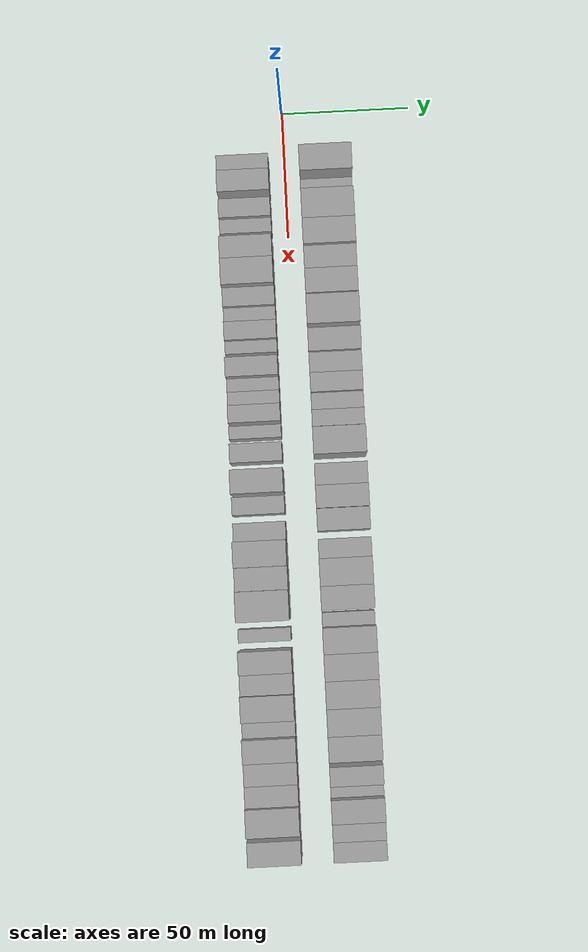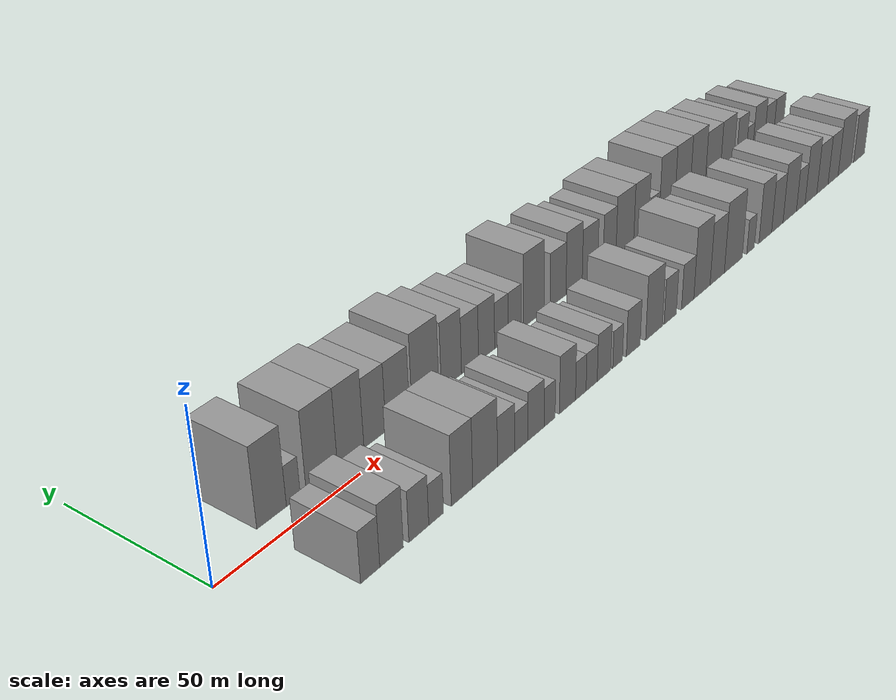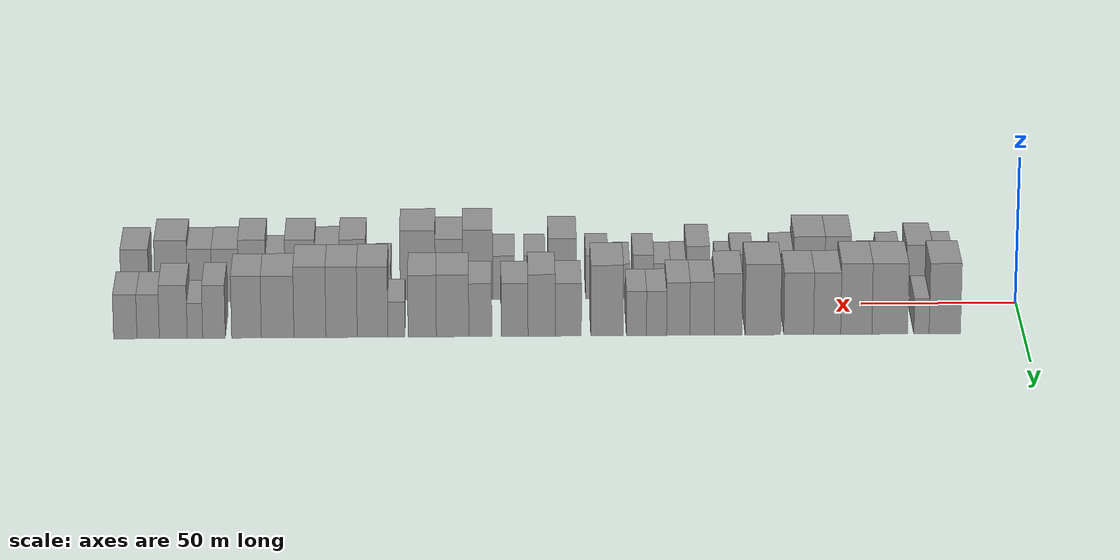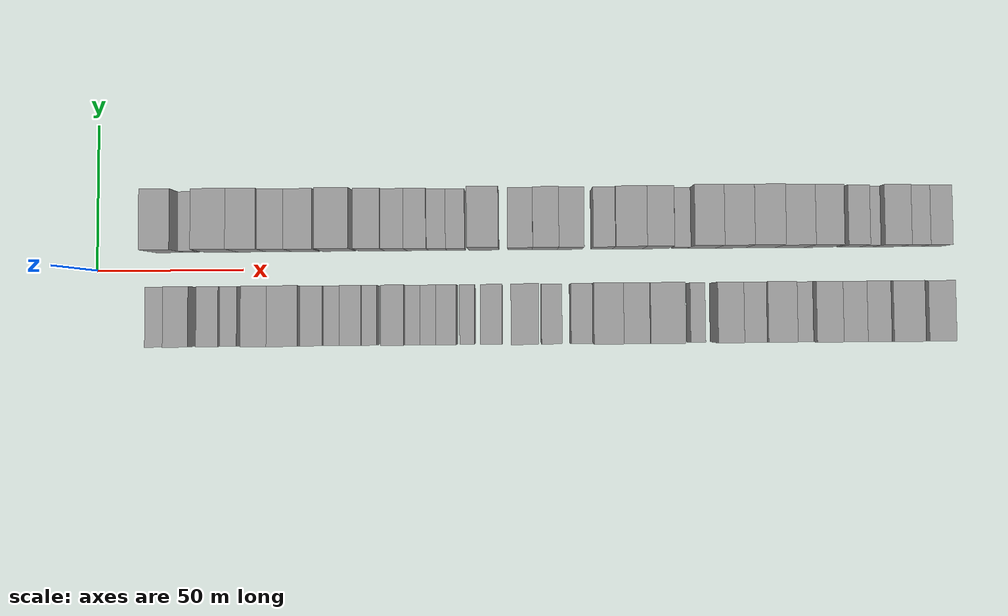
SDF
<sdf version="1.6">
 <world name="default">
  <scene>
   <sky><clouds><speed>12</speed></clouds></sky>
   <ambient>0.4 0.4 0.4 1</ambient>
   <background>0.7 0.7 0.7 1</background>
   <shadows>1</shadows>
  </scene>
  <gravity>0 0 -9.8066</gravity>
  <magnetic_field>6e-06 2.3e-05 -4.2e-05</magnetic_field>
  <physics default="0" name="default_physics" type="ode">
   <ode>
    <solver>
     <type>quick</type>
     <iters>10</iters>
     <sor>1.0</sor>
     <use_dynamic_moi_rescaling>0</use_dynamic_moi_rescaling>
    </solver>
    <constraints>
     <cfm>0</cfm>
     <erp>0.2</erp>
     <contact_max_correcting_vel>100</contact_max_correcting_vel>
     <contact_surface_layer>0.001</contact_surface_layer>
    </constraints>
   </ode>
   <max_step_size>0.004</max_step_size>
   <real_time_factor>1</real_time_factor>
   <real_time_update_rate>250</real_time_update_rate>
  </physics>
  <light name="sun" type="directional">
   <pose>0 0 10 0 0 0</pose>
   <diffuse>0.8 0.8 0.8 1</diffuse>
   <specular>0.2 0.2 0.2 1</specular>
   <attenuation>
    <range>1000</range>
    <constant>0.9</constant>
    <linear>0.01</linear>
    <quadratic>0.001</quadratic>
   </attenuation>
   <direction>-0.5 0.1 -0.9</direction>
  </light>
  <model name="building_1">
   <static>1</static>
   <pose>25.0048 16.0000 0 0.000000 0.000000 1.570796</pose>
   <link name="link">
    <pose>0 0 12.00 0 0 0</pose>
    <collision name="collision"><geometry><box><size>20.0000 10.0095 24.0000</size></box></geometry></collision>
    <visual name="visual">
     <cast_shadows>0</cast_shadows>
     <geometry><box><size>20.0000 10.0095 24.0000</size></box></geometry>
     <material>
      <script>
       <uri>model://grey_wall/materials/scripts</uri>
       <uri>model://grey_wall/materials/textures</uri>
       <name>vrc/grey_wall</name>
      </script>
     </material>
    </visual>
   </link>
  </model>
  <model name="building_2">
   <static>1</static>
   <pose>32.4360 16.0000 0 0.000000 0.000000 1.570796</pose>
   <link name="link">
    <pose>0 0 6.00 0 0 0</pose>
    <collision name="collision"><geometry><box><size>20.0000 4.8529 12.0000</size></box></geometry></collision>
    <visual name="visual">
     <cast_shadows>0</cast_shadows>
     <geometry><box><size>20.0000 4.8529 12.0000</size></box></geometry>
     <material>
      <script>
       <uri>model://grey_wall/materials/scripts</uri>
       <uri>model://grey_wall/materials/textures</uri>
       <name>vrc/grey_wall</name>
      </script>
     </material>
    </visual>
   </link>
  </model>
  <model name="building_3">
   <static>1</static>
   <pose>42.5561 16.0000 0 0.000000 0.000000 1.570796</pose>
   <link name="link">
    <pose>0 0 12.00 0 0 0</pose>
    <collision name="collision"><geometry><box><size>20.0000 11.3873 24.0000</size></box></geometry></collision>
    <visual name="visual">
     <cast_shadows>0</cast_shadows>
     <geometry><box><size>20.0000 11.3873 24.0000</size></box></geometry>
     <material>
      <script>
       <uri>model://grey_wall/materials/scripts</uri>
       <uri>model://grey_wall/materials/textures</uri>
       <name>vrc/grey_wall</name>
      </script>
     </material>
    </visual>
   </link>
  </model>
  <model name="building_4">
   <static>1</static>
   <pose>53.2149 16.0000 0 0.000000 0.000000 1.570796</pose>
   <link name="link">
    <pose>0 0 12.00 0 0 0</pose>
    <collision name="collision"><geometry><box><size>20.0000 9.9303 24.0000</size></box></geometry></collision>
    <visual name="visual">
     <cast_shadows>0</cast_shadows>
     <geometry><box><size>20.0000 9.9303 24.0000</size></box></geometry>
     <material>
      <script>
       <uri>model://grey_wall/materials/scripts</uri>
       <uri>model://grey_wall/materials/textures</uri>
       <name>vrc/grey_wall</name>
      </script>
     </material>
    </visual>
   </link>
  </model>
  <model name="building_5">
   <static>1</static>
   <pose>62.4863 16.0000 0 0.000000 0.000000 1.570796</pose>
   <link name="link">
    <pose>0 0 10.50 0 0 0</pose>
    <collision name="collision"><geometry><box><size>20.0000 8.6126 21.0000</size></box></geometry></collision>
    <visual name="visual">
     <cast_shadows>0</cast_shadows>
     <geometry><box><size>20.0000 8.6126 21.0000</size></box></geometry>
     <material>
      <script>
       <uri>model://grey_wall/materials/scripts</uri>
       <uri>model://grey_wall/materials/textures</uri>
       <name>vrc/grey_wall</name>
      </script>
     </material>
    </visual>
   </link>
  </model>
  <model name="building_6">
   <static>1</static>
   <pose>71.5398 16.0000 0 0.000000 0.000000 1.570796</pose>
   <link name="link">
    <pose>0 0 10.50 0 0 0</pose>
    <collision name="collision"><geometry><box><size>20.0000 9.4945 21.0000</size></box></geometry></collision>
    <visual name="visual">
     <cast_shadows>0</cast_shadows>
     <geometry><box><size>20.0000 9.4945 21.0000</size></box></geometry>
     <material>
      <script>
       <uri>model://grey_wall/materials/scripts</uri>
       <uri>model://grey_wall/materials/textures</uri>
       <name>vrc/grey_wall</name>
      </script>
     </material>
    </visual>
   </link>
  </model>
  <model name="building_7">
   <static>1</static>
   <pose>82.9578 16.0000 0 0.000000 0.000000 1.570796</pose>
   <link name="link">
    <pose>0 0 12.00 0 0 0</pose>
    <collision name="collision"><geometry><box><size>20.0000 11.3415 24.0000</size></box></geometry></collision>
    <visual name="visual">
     <cast_shadows>0</cast_shadows>
     <geometry><box><size>20.0000 11.3415 24.0000</size></box></geometry>
     <material>
      <script>
       <uri>model://grey_wall/materials/scripts</uri>
       <uri>model://grey_wall/materials/textures</uri>
       <name>vrc/grey_wall</name>
      </script>
     </material>
    </visual>
   </link>
  </model>
  <model name="building_8">
   <static>1</static>
   <pose>94.0632 16.0000 0 0.000000 0.000000 1.570796</pose>
   <link name="link">
    <pose>0 0 10.50 0 0 0</pose>
    <collision name="collision"><geometry><box><size>20.0000 8.8693 21.0000</size></box></geometry></collision>
    <visual name="visual">
     <cast_shadows>0</cast_shadows>
     <geometry><box><size>20.0000 8.8693 21.0000</size></box></geometry>
     <material>
      <script>
       <uri>model://grey_wall/materials/scripts</uri>
       <uri>model://grey_wall/materials/textures</uri>
       <name>vrc/grey_wall</name>
      </script>
     </material>
    </visual>
   </link>
  </model>
  <model name="building_9">
   <static>1</static>
   <pose>102.3477 16.0000 0 0.000000 0.000000 1.570796</pose>
   <link name="link">
    <pose>0 0 9.00 0 0 0</pose>
    <collision name="collision"><geometry><box><size>20.0000 7.6997 18.0000</size></box></geometry></collision>
    <visual name="visual">
     <cast_shadows>0</cast_shadows>
     <geometry><box><size>20.0000 7.6997 18.0000</size></box></geometry>
     <material>
      <script>
       <uri>model://grey_wall/materials/scripts</uri>
       <uri>model://grey_wall/materials/textures</uri>
       <name>vrc/grey_wall</name>
      </script>
     </material>
    </visual>
   </link>
  </model>
  <model name="building_10">
   <static>1</static>
   <pose>109.9224 16.0000 0 0.000000 0.000000 1.570796</pose>
   <link name="link">
    <pose>0 0 9.00 0 0 0</pose>
    <collision name="collision"><geometry><box><size>20.0000 7.4497 18.0000</size></box></geometry></collision>
    <visual name="visual">
     <cast_shadows>0</cast_shadows>
     <geometry><box><size>20.0000 7.4497 18.0000</size></box></geometry>
     <material>
      <script>
       <uri>model://grey_wall/materials/scripts</uri>
       <uri>model://grey_wall/materials/textures</uri>
       <name>vrc/grey_wall</name>
      </script>
     </material>
    </visual>
   </link>
  </model>
  <model name="building_11">
   <static>1</static>
   <pose>116.8253 16.0000 0 0.000000 0.000000 1.570796</pose>
   <link name="link">
    <pose>0 0 7.50 0 0 0</pose>
    <collision name="collision"><geometry><box><size>20.0000 6.3560 15.0000</size></box></geometry></collision>
    <visual name="visual">
     <cast_shadows>0</cast_shadows>
     <geometry><box><size>20.0000 6.3560 15.0000</size></box></geometry>
     <material>
      <script>
       <uri>model://grey_wall/materials/scripts</uri>
       <uri>model://grey_wall/materials/textures</uri>
       <name>vrc/grey_wall</name>
      </script>
     </material>
    </visual>
   </link>
  </model>
  <model name="building_12">
   <static>1</static>
   <pose>123.1979 16.0000 0 0.000000 0.000000 1.570796</pose>
   <link name="link">
    <pose>0 0 7.50 0 0 0</pose>
    <collision name="collision"><geometry><box><size>20.0000 6.3890 15.0000</size></box></geometry></collision>
    <visual name="visual">
     <cast_shadows>0</cast_shadows>
     <geometry><box><size>20.0000 6.3890 15.0000</size></box></geometry>
     <material>
      <script>
       <uri>model://grey_wall/materials/scripts</uri>
       <uri>model://grey_wall/materials/textures</uri>
       <name>vrc/grey_wall</name>
      </script>
     </material>
    </visual>
   </link>
  </model>
  <model name="building_13">
   <static>1</static>
   <pose>132.5685 16.0000 0 0.000000 0.000000 1.570796</pose>
   <link name="link">
    <pose>0 0 12.00 0 0 0</pose>
    <collision name="collision"><geometry><box><size>20.0000 10.3522 24.0000</size></box></geometry></collision>
    <visual name="visual">
     <cast_shadows>0</cast_shadows>
     <geometry><box><size>20.0000 10.3522 24.0000</size></box></geometry>
     <material>
      <script>
       <uri>model://grey_wall/materials/scripts</uri>
       <uri>model://grey_wall/materials/textures</uri>
       <name>vrc/grey_wall</name>
      </script>
     </material>
    </visual>
   </link>
  </model>
  <model name="building_14">
   <static>1</static>
   <pose>144.9226 16.0000 0 0.000000 0.000000 1.570796</pose>
   <link name="link">
    <pose>0 0 9.00 0 0 0</pose>
    <collision name="collision"><geometry><box><size>20.0000 8.3561 18.0000</size></box></geometry></collision>
    <visual name="visual">
     <cast_shadows>0</cast_shadows>
     <geometry><box><size>20.0000 8.3561 18.0000</size></box></geometry>
     <material>
      <script>
       <uri>model://grey_wall/materials/scripts</uri>
       <uri>model://grey_wall/materials/textures</uri>
       <name>vrc/grey_wall</name>
      </script>
     </material>
    </visual>
   </link>
  </model>
  <model name="building_15">
   <static>1</static>
   <pose>153.4222 16.0000 0 0.000000 0.000000 1.570796</pose>
   <link name="link">
    <pose>0 0 10.50 0 0 0</pose>
    <collision name="collision"><geometry><box><size>20.0000 8.6431 21.0000</size></box></geometry></collision>
    <visual name="visual">
     <cast_shadows>0</cast_shadows>
     <geometry><box><size>20.0000 8.6431 21.0000</size></box></geometry>
     <material>
      <script>
       <uri>model://grey_wall/materials/scripts</uri>
       <uri>model://grey_wall/materials/textures</uri>
       <name>vrc/grey_wall</name>
      </script>
     </material>
    </visual>
   </link>
  </model>
  <model name="building_16">
   <static>1</static>
   <pose>161.9941 16.0000 0 0.000000 0.000000 1.570796</pose>
   <link name="link">
    <pose>0 0 9.00 0 0 0</pose>
    <collision name="collision"><geometry><box><size>20.0000 8.5007 18.0000</size></box></geometry></collision>
    <visual name="visual">
     <cast_shadows>0</cast_shadows>
     <geometry><box><size>20.0000 8.5007 18.0000</size></box></geometry>
     <material>
      <script>
       <uri>model://grey_wall/materials/scripts</uri>
       <uri>model://grey_wall/materials/textures</uri>
       <name>vrc/grey_wall</name>
      </script>
     </material>
    </visual>
   </link>
  </model>
  <model name="building_17">
   <static>1</static>
   <pose>172.9062 16.0000 0 0.000000 0.000000 1.570796</pose>
   <link name="link">
    <pose>0 0 9.00 0 0 0</pose>
    <collision name="collision"><geometry><box><size>20.0000 7.3235 18.0000</size></box></geometry></collision>
    <visual name="visual">
     <cast_shadows>0</cast_shadows>
     <geometry><box><size>20.0000 7.3235 18.0000</size></box></geometry>
     <material>
      <script>
       <uri>model://grey_wall/materials/scripts</uri>
       <uri>model://grey_wall/materials/textures</uri>
       <name>vrc/grey_wall</name>
      </script>
     </material>
    </visual>
   </link>
  </model>
  <model name="building_18">
   <static>1</static>
   <pose>181.7380 16.0000 0 0.000000 0.000000 1.570796</pose>
   <link name="link">
    <pose>0 0 10.50 0 0 0</pose>
    <collision name="collision"><geometry><box><size>20.0000 10.3401 21.0000</size></box></geometry></collision>
    <visual name="visual">
     <cast_shadows>0</cast_shadows>
     <geometry><box><size>20.0000 10.3401 21.0000</size></box></geometry>
     <material>
      <script>
       <uri>model://grey_wall/materials/scripts</uri>
       <uri>model://grey_wall/materials/textures</uri>
       <name>vrc/grey_wall</name>
      </script>
     </material>
    </visual>
   </link>
  </model>
  <model name="building_19">
   <static>1</static>
   <pose>191.3927 16.0000 0 0.000000 0.000000 1.570796</pose>
   <link name="link">
    <pose>0 0 10.50 0 0 0</pose>
    <collision name="collision"><geometry><box><size>20.0000 8.9692 21.0000</size></box></geometry></collision>
    <visual name="visual">
     <cast_shadows>0</cast_shadows>
     <geometry><box><size>20.0000 8.9692 21.0000</size></box></geometry>
     <material>
      <script>
       <uri>model://grey_wall/materials/scripts</uri>
       <uri>model://grey_wall/materials/textures</uri>
       <name>vrc/grey_wall</name>
      </script>
     </material>
    </visual>
   </link>
  </model>
  <model name="building_20">
   <static>1</static>
   <pose>199.5718 16.0000 0 0.000000 0.000000 1.570796</pose>
   <link name="link">
    <pose>0 0 6.00 0 0 0</pose>
    <collision name="collision"><geometry><box><size>20.0000 5.3890 12.0000</size></box></geometry></collision>
    <visual name="visual">
     <cast_shadows>0</cast_shadows>
     <geometry><box><size>20.0000 5.3890 12.0000</size></box></geometry>
     <material>
      <script>
       <uri>model://grey_wall/materials/scripts</uri>
       <uri>model://grey_wall/materials/textures</uri>
       <name>vrc/grey_wall</name>
      </script>
     </material>
    </visual>
   </link>
  </model>
  <model name="building_21">
   <static>1</static>
   <pose>207.1382 16.0000 0 0.000000 0.000000 1.570796</pose>
   <link name="link">
    <pose>0 0 12.00 0 0 0</pose>
    <collision name="collision"><geometry><box><size>20.0000 9.7437 24.0000</size></box></geometry></collision>
    <visual name="visual">
     <cast_shadows>0</cast_shadows>
     <geometry><box><size>20.0000 9.7437 24.0000</size></box></geometry>
     <material>
      <script>
       <uri>model://grey_wall/materials/scripts</uri>
       <uri>model://grey_wall/materials/textures</uri>
       <name>vrc/grey_wall</name>
      </script>
     </material>
    </visual>
   </link>
  </model>
  <model name="building_22">
   <static>1</static>
   <pose>216.9790 16.0000 0 0.000000 0.000000 1.570796</pose>
   <link name="link">
    <pose>0 0 12.00 0 0 0</pose>
    <collision name="collision"><geometry><box><size>20.0000 9.9380 24.0000</size></box></geometry></collision>
    <visual name="visual">
     <cast_shadows>0</cast_shadows>
     <geometry><box><size>20.0000 9.9380 24.0000</size></box></geometry>
     <material>
      <script>
       <uri>model://grey_wall/materials/scripts</uri>
       <uri>model://grey_wall/materials/textures</uri>
       <name>vrc/grey_wall</name>
      </script>
     </material>
    </visual>
   </link>
  </model>
  <model name="building_23">
   <static>1</static>
   <pose>227.0366 16.0000 0 0.000000 0.000000 1.570796</pose>
   <link name="link">
    <pose>0 0 12.00 0 0 0</pose>
    <collision name="collision"><geometry><box><size>20.0000 10.1770 24.0000</size></box></geometry></collision>
    <visual name="visual">
     <cast_shadows>0</cast_shadows>
     <geometry><box><size>20.0000 10.1770 24.0000</size></box></geometry>
     <material>
      <script>
       <uri>model://grey_wall/materials/scripts</uri>
       <uri>model://grey_wall/materials/textures</uri>
       <name>vrc/grey_wall</name>
      </script>
     </material>
    </visual>
   </link>
  </model>
  <model name="building_24">
   <static>1</static>
   <pose>237.3103 16.0000 0 0.000000 0.000000 1.570796</pose>
   <link name="link">
    <pose>0 0 10.50 0 0 0</pose>
    <collision name="collision"><geometry><box><size>20.0000 10.3703 21.0000</size></box></geometry></collision>
    <visual name="visual">
     <cast_shadows>0</cast_shadows>
     <geometry><box><size>20.0000 10.3703 21.0000</size></box></geometry>
     <material>
      <script>
       <uri>model://grey_wall/materials/scripts</uri>
       <uri>model://grey_wall/materials/textures</uri>
       <name>vrc/grey_wall</name>
      </script>
     </material>
    </visual>
   </link>
  </model>
  <model name="building_25">
   <static>1</static>
   <pose>247.2131 16.0000 0 0.000000 0.000000 1.570796</pose>
   <link name="link">
    <pose>0 0 10.50 0 0 0</pose>
    <collision name="collision"><geometry><box><size>20.0000 9.4353 21.0000</size></box></geometry></collision>
    <visual name="visual">
     <cast_shadows>0</cast_shadows>
     <geometry><box><size>20.0000 9.4353 21.0000</size></box></geometry>
     <material>
      <script>
       <uri>model://grey_wall/materials/scripts</uri>
       <uri>model://grey_wall/materials/textures</uri>
       <name>vrc/grey_wall</name>
      </script>
     </material>
    </visual>
   </link>
  </model>
  <model name="building_26">
   <static>1</static>
   <pose>257.5350 16.0000 0 0.000000 0.000000 1.570796</pose>
   <link name="link">
    <pose>0 0 9.00 0 0 0</pose>
    <collision name="collision"><geometry><box><size>20.0000 7.2085 18.0000</size></box></geometry></collision>
    <visual name="visual">
     <cast_shadows>0</cast_shadows>
     <geometry><box><size>20.0000 7.2085 18.0000</size></box></geometry>
     <material>
      <script>
       <uri>model://grey_wall/materials/scripts</uri>
       <uri>model://grey_wall/materials/textures</uri>
       <name>vrc/grey_wall</name>
      </script>
     </material>
    </visual>
   </link>
  </model>
  <model name="building_27">
   <static>1</static>
   <pose>263.5808 16.0000 0 0.000000 0.000000 1.570796</pose>
   <link name="link">
    <pose>0 0 6.00 0 0 0</pose>
    <collision name="collision"><geometry><box><size>20.0000 4.8830 12.0000</size></box></geometry></collision>
    <visual name="visual">
     <cast_shadows>0</cast_shadows>
     <geometry><box><size>20.0000 4.8830 12.0000</size></box></geometry>
     <material>
      <script>
       <uri>model://grey_wall/materials/scripts</uri>
       <uri>model://grey_wall/materials/textures</uri>
       <name>vrc/grey_wall</name>
      </script>
     </material>
    </visual>
   </link>
  </model>
  <model name="building_28">
   <static>1</static>
   <pose>270.4634 16.0000 0 0.000000 0.000000 1.570796</pose>
   <link name="link">
    <pose>0 0 9.00 0 0 0</pose>
    <collision name="collision"><geometry><box><size>20.0000 8.8822 18.0000</size></box></geometry></collision>
    <visual name="visual">
     <cast_shadows>0</cast_shadows>
     <geometry><box><size>20.0000 8.8822 18.0000</size></box></geometry>
     <material>
      <script>
       <uri>model://grey_wall/materials/scripts</uri>
       <uri>model://grey_wall/materials/textures</uri>
       <name>vrc/grey_wall</name>
      </script>
     </material>
    </visual>
   </link>
  </model>
  <model name="building_29">
   <static>1</static>
   <pose>278.4469 16.0000 0 0.000000 0.000000 1.570796</pose>
   <link name="link">
    <pose>0 0 7.50 0 0 0</pose>
    <collision name="collision"><geometry><box><size>20.0000 7.0848 15.0000</size></box></geometry></collision>
    <visual name="visual">
     <cast_shadows>0</cast_shadows>
     <geometry><box><size>20.0000 7.0848 15.0000</size></box></geometry>
     <material>
      <script>
       <uri>model://grey_wall/materials/scripts</uri>
       <uri>model://grey_wall/materials/textures</uri>
       <name>vrc/grey_wall</name>
      </script>
     </material>
    </visual>
   </link>
  </model>
  <model name="building_30">
   <static>1</static>
   <pose>285.6913 16.0000 0 0.000000 0.000000 1.570796</pose>
   <link name="link">
    <pose>0 0 7.50 0 0 0</pose>
    <collision name="collision"><geometry><box><size>20.0000 7.4039 15.0000</size></box></geometry></collision>
    <visual name="visual">
     <cast_shadows>0</cast_shadows>
     <geometry><box><size>20.0000 7.4039 15.0000</size></box></geometry>
     <material>
      <script>
       <uri>model://grey_wall/materials/scripts</uri>
       <uri>model://grey_wall/materials/textures</uri>
       <name>vrc/grey_wall</name>
      </script>
     </material>
    </visual>
   </link>
  </model>
  <model name="building_31">
   <static>1</static>
   <pose>23.3150 -16.0000 0 0.000000 0.000000 1.570796</pose>
   <link name="link">
    <pose>0 0 7.50 0 0 0</pose>
    <collision name="collision"><geometry><box><size>20.0000 6.6299 15.0000</size></box></geometry></collision>
    <visual name="visual">
     <cast_shadows>0</cast_shadows>
     <geometry><box><size>20.0000 6.6299 15.0000</size></box></geometry>
     <material>
      <script>
       <uri>model://grey_wall/materials/scripts</uri>
       <uri>model://grey_wall/materials/textures</uri>
       <name>vrc/grey_wall</name>
      </script>
     </material>
    </visual>
   </link>
  </model>
  <model name="building_32">
   <static>1</static>
   <pose>30.8059 -16.0000 0 0.000000 0.000000 1.570796</pose>
   <link name="link">
    <pose>0 0 9.00 0 0 0</pose>
    <collision name="collision"><geometry><box><size>20.0000 8.3519 18.0000</size></box></geometry></collision>
    <visual name="visual">
     <cast_shadows>0</cast_shadows>
     <geometry><box><size>20.0000 8.3519 18.0000</size></box></geometry>
     <material>
      <script>
       <uri>model://grey_wall/materials/scripts</uri>
       <uri>model://grey_wall/materials/textures</uri>
       <name>vrc/grey_wall</name>
      </script>
     </material>
    </visual>
   </link>
  </model>
  <model name="building_33">
   <static>1</static>
   <pose>40.6561 -16.0000 0 0.000000 0.000000 1.570796</pose>
   <link name="link">
    <pose>0 0 7.50 0 0 0</pose>
    <collision name="collision"><geometry><box><size>20.0000 7.3485 15.0000</size></box></geometry></collision>
    <visual name="visual">
     <cast_shadows>0</cast_shadows>
     <geometry><box><size>20.0000 7.3485 15.0000</size></box></geometry>
     <material>
      <script>
       <uri>model://grey_wall/materials/scripts</uri>
       <uri>model://grey_wall/materials/textures</uri>
       <name>vrc/grey_wall</name>
      </script>
     </material>
    </visual>
   </link>
  </model>
  <model name="building_34">
   <static>1</static>
   <pose>47.1255 -16.0000 0 0.000000 0.000000 1.570796</pose>
   <link name="link">
    <pose>0 0 6.00 0 0 0</pose>
    <collision name="collision"><geometry><box><size>20.0000 5.5903 12.0000</size></box></geometry></collision>
    <visual name="visual">
     <cast_shadows>0</cast_shadows>
     <geometry><box><size>20.0000 5.5903 12.0000</size></box></geometry>
     <material>
      <script>
       <uri>model://grey_wall/materials/scripts</uri>
       <uri>model://grey_wall/materials/textures</uri>
       <name>vrc/grey_wall</name>
      </script>
     </material>
    </visual>
   </link>
  </model>
  <model name="building_35">
   <static>1</static>
   <pose>57.1463 -16.0000 0 0.000000 0.000000 1.570796</pose>
   <link name="link">
    <pose>0 0 10.50 0 0 0</pose>
    <collision name="collision"><geometry><box><size>20.0000 8.4513 21.0000</size></box></geometry></collision>
    <visual name="visual">
     <cast_shadows>0</cast_shadows>
     <geometry><box><size>20.0000 8.4513 21.0000</size></box></geometry>
     <material>
      <script>
       <uri>model://grey_wall/materials/scripts</uri>
       <uri>model://grey_wall/materials/textures</uri>
       <name>vrc/grey_wall</name>
      </script>
     </material>
    </visual>
   </link>
  </model>
  <model name="building_36">
   <static>1</static>
   <pose>66.4636 -16.0000 0 0.000000 0.000000 1.570796</pose>
   <link name="link">
    <pose>0 0 10.50 0 0 0</pose>
    <collision name="collision"><geometry><box><size>20.0000 10.1834 21.0000</size></box></geometry></collision>
    <visual name="visual">
     <cast_shadows>0</cast_shadows>
     <geometry><box><size>20.0000 10.1834 21.0000</size></box></geometry>
     <material>
      <script>
       <uri>model://grey_wall/materials/scripts</uri>
       <uri>model://grey_wall/materials/textures</uri>
       <name>vrc/grey_wall</name>
      </script>
     </material>
    </visual>
   </link>
  </model>
  <model name="building_37">
   <static>1</static>
   <pose>75.2245 -16.0000 0 0.000000 0.000000 1.570796</pose>
   <link name="link">
    <pose>0 0 7.50 0 0 0</pose>
    <collision name="collision"><geometry><box><size>20.0000 7.3383 15.0000</size></box></geometry></collision>
    <visual name="visual">
     <cast_shadows>0</cast_shadows>
     <geometry><box><size>20.0000 7.3383 15.0000</size></box></geometry>
     <material>
      <script>
       <uri>model://grey_wall/materials/scripts</uri>
       <uri>model://grey_wall/materials/textures</uri>
       <name>vrc/grey_wall</name>
      </script>
     </material>
    </visual>
   </link>
  </model>
  <model name="building_38">
   <static>1</static>
   <pose>81.7607 -16.0000 0 0.000000 0.000000 1.570796</pose>
   <link name="link">
    <pose>0 0 6.00 0 0 0</pose>
    <collision name="collision"><geometry><box><size>20.0000 5.7341 12.0000</size></box></geometry></collision>
    <visual name="visual">
     <cast_shadows>0</cast_shadows>
     <geometry><box><size>20.0000 5.7341 12.0000</size></box></geometry>
     <material>
      <script>
       <uri>model://grey_wall/materials/scripts</uri>
       <uri>model://grey_wall/materials/textures</uri>
       <name>vrc/grey_wall</name>
      </script>
     </material>
    </visual>
   </link>
  </model>
  <model name="building_39">
   <static>1</static>
   <pose>88.1978 -16.0000 0 0.000000 0.000000 1.570796</pose>
   <link name="link">
    <pose>0 0 7.50 0 0 0</pose>
    <collision name="collision"><geometry><box><size>20.0000 7.1402 15.0000</size></box></geometry></collision>
    <visual name="visual">
     <cast_shadows>0</cast_shadows>
     <geometry><box><size>20.0000 7.1402 15.0000</size></box></geometry>
     <material>
      <script>
       <uri>model://grey_wall/materials/scripts</uri>
       <uri>model://grey_wall/materials/textures</uri>
       <name>vrc/grey_wall</name>
      </script>
     </material>
    </visual>
   </link>
  </model>
  <model name="building_40">
   <static>1</static>
   <pose>94.2551 -16.0000 0 0.000000 0.000000 1.570796</pose>
   <link name="link">
    <pose>0 0 6.00 0 0 0</pose>
    <collision name="collision"><geometry><box><size>20.0000 4.9745 12.0000</size></box></geometry></collision>
    <visual name="visual">
     <cast_shadows>0</cast_shadows>
     <geometry><box><size>20.0000 4.9745 12.0000</size></box></geometry>
     <material>
      <script>
       <uri>model://grey_wall/materials/scripts</uri>
       <uri>model://grey_wall/materials/textures</uri>
       <name>vrc/grey_wall</name>
      </script>
     </material>
    </visual>
   </link>
  </model>
  <model name="building_41">
   <static>1</static>
   <pose>102.5011 -16.0000 0 0.000000 0.000000 1.570796</pose>
   <link name="link">
    <pose>0 0 9.00 0 0 0</pose>
    <collision name="collision"><geometry><box><size>20.0000 7.5175 18.0000</size></box></geometry></collision>
    <visual name="visual">
     <cast_shadows>0</cast_shadows>
     <geometry><box><size>20.0000 7.5175 18.0000</size></box></geometry>
     <material>
      <script>
       <uri>model://grey_wall/materials/scripts</uri>
       <uri>model://grey_wall/materials/textures</uri>
       <name>vrc/grey_wall</name>
      </script>
     </material>
    </visual>
   </link>
  </model>
  <model name="building_42">
   <static>1</static>
   <pose>108.7936 -16.0000 0 0.000000 0.000000 1.570796</pose>
   <link name="link">
    <pose>0 0 6.00 0 0 0</pose>
    <collision name="collision"><geometry><box><size>20.0000 5.0675 12.0000</size></box></geometry></collision>
    <visual name="visual">
     <cast_shadows>0</cast_shadows>
     <geometry><box><size>20.0000 5.0675 12.0000</size></box></geometry>
     <material>
      <script>
       <uri>model://grey_wall/materials/scripts</uri>
       <uri>model://grey_wall/materials/textures</uri>
       <name>vrc/grey_wall</name>
      </script>
     </material>
    </visual>
   </link>
  </model>
  <model name="building_43">
   <static>1</static>
   <pose>114.0409 -16.0000 0 0.000000 0.000000 1.570796</pose>
   <link name="link">
    <pose>0 0 6.00 0 0 0</pose>
    <collision name="collision"><geometry><box><size>20.0000 5.4271 12.0000</size></box></geometry></collision>
    <visual name="visual">
     <cast_shadows>0</cast_shadows>
     <geometry><box><size>20.0000 5.4271 12.0000</size></box></geometry>
     <material>
      <script>
       <uri>model://grey_wall/materials/scripts</uri>
       <uri>model://grey_wall/materials/textures</uri>
       <name>vrc/grey_wall</name>
      </script>
     </material>
    </visual>
   </link>
  </model>
  <model name="building_44">
   <static>1</static>
   <pose>120.1316 -16.0000 0 0.000000 0.000000 1.570796</pose>
   <link name="link">
    <pose>0 0 7.50 0 0 0</pose>
    <collision name="collision"><geometry><box><size>20.0000 6.7543 15.0000</size></box></geometry></collision>
    <visual name="visual">
     <cast_shadows>0</cast_shadows>
     <geometry><box><size>20.0000 6.7543 15.0000</size></box></geometry>
     <material>
      <script>
       <uri>model://grey_wall/materials/scripts</uri>
       <uri>model://grey_wall/materials/textures</uri>
       <name>vrc/grey_wall</name>
      </script>
     </material>
    </visual>
   </link>
  </model>
  <model name="building_45">
   <static>1</static>
   <pose>127.0112 -16.0000 0 0.000000 0.000000 1.570796</pose>
   <link name="link">
    <pose>0 0 6.00 0 0 0</pose>
    <collision name="collision"><geometry><box><size>20.0000 5.0050 12.0000</size></box></geometry></collision>
    <visual name="visual">
     <cast_shadows>0</cast_shadows>
     <geometry><box><size>20.0000 5.0050 12.0000</size></box></geometry>
     <material>
      <script>
       <uri>model://grey_wall/materials/scripts</uri>
       <uri>model://grey_wall/materials/textures</uri>
       <name>vrc/grey_wall</name>
      </script>
     </material>
    </visual>
   </link>
  </model>
  <model name="building_46">
   <static>1</static>
   <pose>135.1357 -16.0000 0 0.000000 0.000000 1.570796</pose>
   <link name="link">
    <pose>0 0 7.50 0 0 0</pose>
    <collision name="collision"><geometry><box><size>20.0000 7.2440 15.0000</size></box></geometry></collision>
    <visual name="visual">
     <cast_shadows>0</cast_shadows>
     <geometry><box><size>20.0000 7.2440 15.0000</size></box></geometry>
     <material>
      <script>
       <uri>model://grey_wall/materials/scripts</uri>
       <uri>model://grey_wall/materials/textures</uri>
       <name>vrc/grey_wall</name>
      </script>
     </material>
    </visual>
   </link>
  </model>
  <model name="building_47">
   <static>1</static>
   <pose>146.3144 -16.0000 0 0.000000 0.000000 1.570796</pose>
   <link name="link">
    <pose>0 0 10.50 0 0 0</pose>
    <collision name="collision"><geometry><box><size>20.0000 9.1134 21.0000</size></box></geometry></collision>
    <visual name="visual">
     <cast_shadows>0</cast_shadows>
     <geometry><box><size>20.0000 9.1134 21.0000</size></box></geometry>
     <material>
      <script>
       <uri>model://grey_wall/materials/scripts</uri>
       <uri>model://grey_wall/materials/textures</uri>
       <name>vrc/grey_wall</name>
      </script>
     </material>
    </visual>
   </link>
  </model>
  <model name="building_48">
   <static>1</static>
   <pose>155.2886 -16.0000 0 0.000000 0.000000 1.570796</pose>
   <link name="link">
    <pose>0 0 7.50 0 0 0</pose>
    <collision name="collision"><geometry><box><size>20.0000 6.8350 15.0000</size></box></geometry></collision>
    <visual name="visual">
     <cast_shadows>0</cast_shadows>
     <geometry><box><size>20.0000 6.8350 15.0000</size></box></geometry>
     <material>
      <script>
       <uri>model://grey_wall/materials/scripts</uri>
       <uri>model://grey_wall/materials/textures</uri>
       <name>vrc/grey_wall</name>
      </script>
     </material>
    </visual>
   </link>
  </model>
  <model name="building_49">
   <static>1</static>
   <pose>165.2825 -16.0000 0 0.000000 0.000000 1.570796</pose>
   <link name="link">
    <pose>0 0 7.50 0 0 0</pose>
    <collision name="collision"><geometry><box><size>20.0000 7.1528 15.0000</size></box></geometry></collision>
    <visual name="visual">
     <cast_shadows>0</cast_shadows>
     <geometry><box><size>20.0000 7.1528 15.0000</size></box></geometry>
     <material>
      <script>
       <uri>model://grey_wall/materials/scripts</uri>
       <uri>model://grey_wall/materials/textures</uri>
       <name>vrc/grey_wall</name>
      </script>
     </material>
    </visual>
   </link>
  </model>
  <model name="building_50">
   <static>1</static>
   <pose>173.7167 -16.0000 0 0.000000 0.000000 1.570796</pose>
   <link name="link">
    <pose>0 0 12.00 0 0 0</pose>
    <collision name="collision"><geometry><box><size>20.0000 9.7155 24.0000</size></box></geometry></collision>
    <visual name="visual">
     <cast_shadows>0</cast_shadows>
     <geometry><box><size>20.0000 9.7155 24.0000</size></box></geometry>
     <material>
      <script>
       <uri>model://grey_wall/materials/scripts</uri>
       <uri>model://grey_wall/materials/textures</uri>
       <name>vrc/grey_wall</name>
      </script>
     </material>
    </visual>
   </link>
  </model>
  <model name="building_51">
   <static>1</static>
   <pose>182.9810 -16.0000 0 0.000000 0.000000 1.570796</pose>
   <link name="link">
    <pose>0 0 10.50 0 0 0</pose>
    <collision name="collision"><geometry><box><size>20.0000 8.8132 21.0000</size></box></geometry></collision>
    <visual name="visual">
     <cast_shadows>0</cast_shadows>
     <geometry><box><size>20.0000 8.8132 21.0000</size></box></geometry>
     <material>
      <script>
       <uri>model://grey_wall/materials/scripts</uri>
       <uri>model://grey_wall/materials/textures</uri>
       <name>vrc/grey_wall</name>
      </script>
     </material>
    </visual>
   </link>
  </model>
  <model name="building_52">
   <static>1</static>
   <pose>193.0665 -16.0000 0 0.000000 0.000000 1.570796</pose>
   <link name="link">
    <pose>0 0 12.00 0 0 0</pose>
    <collision name="collision"><geometry><box><size>20.0000 11.3579 24.0000</size></box></geometry></collision>
    <visual name="visual">
     <cast_shadows>0</cast_shadows>
     <geometry><box><size>20.0000 11.3579 24.0000</size></box></geometry>
     <material>
      <script>
       <uri>model://grey_wall/materials/scripts</uri>
       <uri>model://grey_wall/materials/textures</uri>
       <name>vrc/grey_wall</name>
      </script>
     </material>
    </visual>
   </link>
  </model>
  <model name="building_53">
   <static>1</static>
   <pose>204.2439 -16.0000 0 0.000000 0.000000 1.570796</pose>
   <link name="link">
    <pose>0 0 6.00 0 0 0</pose>
    <collision name="collision"><geometry><box><size>20.0000 4.9968 12.0000</size></box></geometry></collision>
    <visual name="visual">
     <cast_shadows>0</cast_shadows>
     <geometry><box><size>20.0000 4.9968 12.0000</size></box></geometry>
     <material>
      <script>
       <uri>model://grey_wall/materials/scripts</uri>
       <uri>model://grey_wall/materials/textures</uri>
       <name>vrc/grey_wall</name>
      </script>
     </material>
    </visual>
   </link>
  </model>
  <model name="building_54">
   <static>1</static>
   <pose>214.0443 -16.0000 0 0.000000 0.000000 1.570796</pose>
   <link name="link">
    <pose>0 0 10.50 0 0 0</pose>
    <collision name="collision"><geometry><box><size>20.0000 8.6040 21.0000</size></box></geometry></collision>
    <visual name="visual">
     <cast_shadows>0</cast_shadows>
     <geometry><box><size>20.0000 8.6040 21.0000</size></box></geometry>
     <material>
      <script>
       <uri>model://grey_wall/materials/scripts</uri>
       <uri>model://grey_wall/materials/textures</uri>
       <name>vrc/grey_wall</name>
      </script>
     </material>
    </visual>
   </link>
  </model>
  <model name="building_55">
   <static>1</static>
   <pose>222.3034 -16.0000 0 0.000000 0.000000 1.570796</pose>
   <link name="link">
    <pose>0 0 9.00 0 0 0</pose>
    <collision name="collision"><geometry><box><size>20.0000 7.9143 18.0000</size></box></geometry></collision>
    <visual name="visual">
     <cast_shadows>0</cast_shadows>
     <geometry><box><size>20.0000 7.9143 18.0000</size></box></geometry>
     <material>
      <script>
       <uri>model://grey_wall/materials/scripts</uri>
       <uri>model://grey_wall/materials/textures</uri>
       <name>vrc/grey_wall</name>
      </script>
     </material>
    </visual>
   </link>
  </model>
  <model name="building_56">
   <static>1</static>
   <pose>231.0617 -16.0000 0 0.000000 0.000000 1.570796</pose>
   <link name="link">
    <pose>0 0 10.50 0 0 0</pose>
    <collision name="collision"><geometry><box><size>20.0000 9.6022 21.0000</size></box></geometry></collision>
    <visual name="visual">
     <cast_shadows>0</cast_shadows>
     <geometry><box><size>20.0000 9.6022 21.0000</size></box></geometry>
     <material>
      <script>
       <uri>model://grey_wall/materials/scripts</uri>
       <uri>model://grey_wall/materials/textures</uri>
       <name>vrc/grey_wall</name>
      </script>
     </material>
    </visual>
   </link>
  </model>
  <model name="building_57">
   <static>1</static>
   <pose>239.0195 -16.0000 0 0.000000 0.000000 1.570796</pose>
   <link name="link">
    <pose>0 0 7.50 0 0 0</pose>
    <collision name="collision"><geometry><box><size>20.0000 6.3135 15.0000</size></box></geometry></collision>
    <visual name="visual">
     <cast_shadows>0</cast_shadows>
     <geometry><box><size>20.0000 6.3135 15.0000</size></box></geometry>
     <material>
      <script>
       <uri>model://grey_wall/materials/scripts</uri>
       <uri>model://grey_wall/materials/textures</uri>
       <name>vrc/grey_wall</name>
      </script>
     </material>
    </visual>
   </link>
  </model>
  <model name="building_58">
   <static>1</static>
   <pose>246.5631 -16.0000 0 0.000000 0.000000 1.570796</pose>
   <link name="link">
    <pose>0 0 10.50 0 0 0</pose>
    <collision name="collision"><geometry><box><size>20.0000 8.7736 21.0000</size></box></geometry></collision>
    <visual name="visual">
     <cast_shadows>0</cast_shadows>
     <geometry><box><size>20.0000 8.7736 21.0000</size></box></geometry>
     <material>
      <script>
       <uri>model://grey_wall/materials/scripts</uri>
       <uri>model://grey_wall/materials/textures</uri>
       <name>vrc/grey_wall</name>
      </script>
     </material>
    </visual>
   </link>
  </model>
  <model name="building_59">
   <static>1</static>
   <pose>255.2510 -16.0000 0 0.000000 0.000000 1.570796</pose>
   <link name="link">
    <pose>0 0 9.00 0 0 0</pose>
    <collision name="collision"><geometry><box><size>20.0000 8.6021 18.0000</size></box></geometry></collision>
    <visual name="visual">
     <cast_shadows>0</cast_shadows>
     <geometry><box><size>20.0000 8.6021 18.0000</size></box></geometry>
     <material>
      <script>
       <uri>model://grey_wall/materials/scripts</uri>
       <uri>model://grey_wall/materials/textures</uri>
       <name>vrc/grey_wall</name>
      </script>
     </material>
    </visual>
   </link>
  </model>
  <model name="building_60">
   <static>1</static>
   <pose>263.4978 -16.0000 0 0.000000 0.000000 1.570796</pose>
   <link name="link">
    <pose>0 0 9.00 0 0 0</pose>
    <collision name="collision"><geometry><box><size>20.0000 7.8916 18.0000</size></box></geometry></collision>
    <visual name="visual">
     <cast_shadows>0</cast_shadows>
     <geometry><box><size>20.0000 7.8916 18.0000</size></box></geometry>
     <material>
      <script>
       <uri>model://grey_wall/materials/scripts</uri>
       <uri>model://grey_wall/materials/textures</uri>
       <name>vrc/grey_wall</name>
      </script>
     </material>
    </visual>
   </link>
  </model>
  <model name="building_61">
   <static>1</static>
   <pose>272.6704 -16.0000 0 0.000000 0.000000 1.570796</pose>
   <link name="link">
    <pose>0 0 10.50 0 0 0</pose>
    <collision name="collision"><geometry><box><size>20.0000 10.4536 21.0000</size></box></geometry></collision>
    <visual name="visual">
     <cast_shadows>0</cast_shadows>
     <geometry><box><size>20.0000 10.4536 21.0000</size></box></geometry>
     <material>
      <script>
       <uri>model://grey_wall/materials/scripts</uri>
       <uri>model://grey_wall/materials/textures</uri>
       <name>vrc/grey_wall</name>
      </script>
     </material>
    </visual>
   </link>
  </model>
  <model name="building_62">
   <static>1</static>
   <pose>284.3865 -16.0000 0 0.000000 0.000000 1.570796</pose>
   <link name="link">
    <pose>0 0 9.00 0 0 0</pose>
    <collision name="collision"><geometry><box><size>20.0000 8.9787 18.0000</size></box></geometry></collision>
    <visual name="visual">
     <cast_shadows>0</cast_shadows>
     <geometry><box><size>20.0000 8.9787 18.0000</size></box></geometry>
     <material>
      <script>
       <uri>model://grey_wall/materials/scripts</uri>
       <uri>model://grey_wall/materials/textures</uri>
       <name>vrc/grey_wall</name>
      </script>
     </material>
    </visual>
   </link>
  </model>
 </world>
</sdf>
